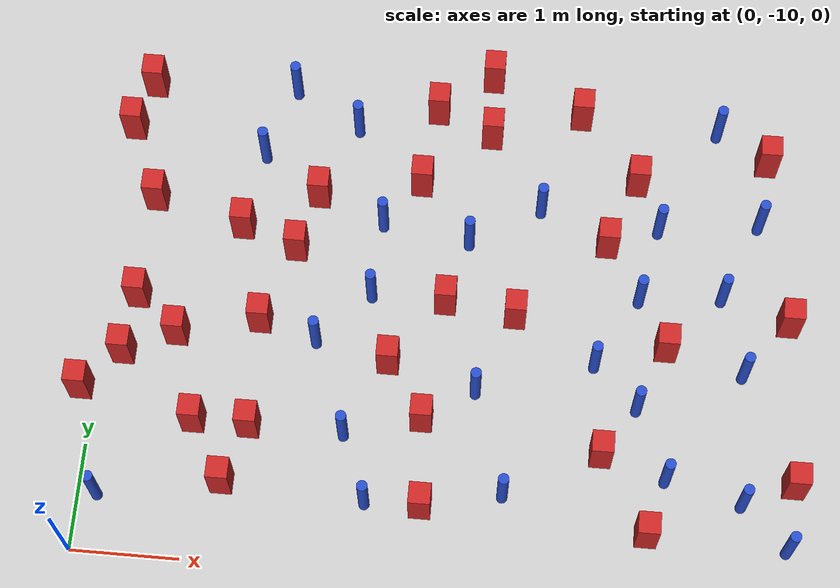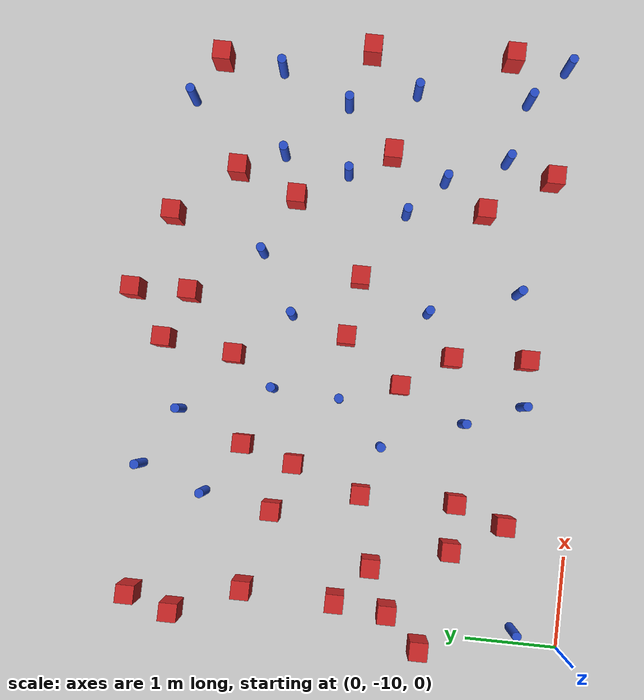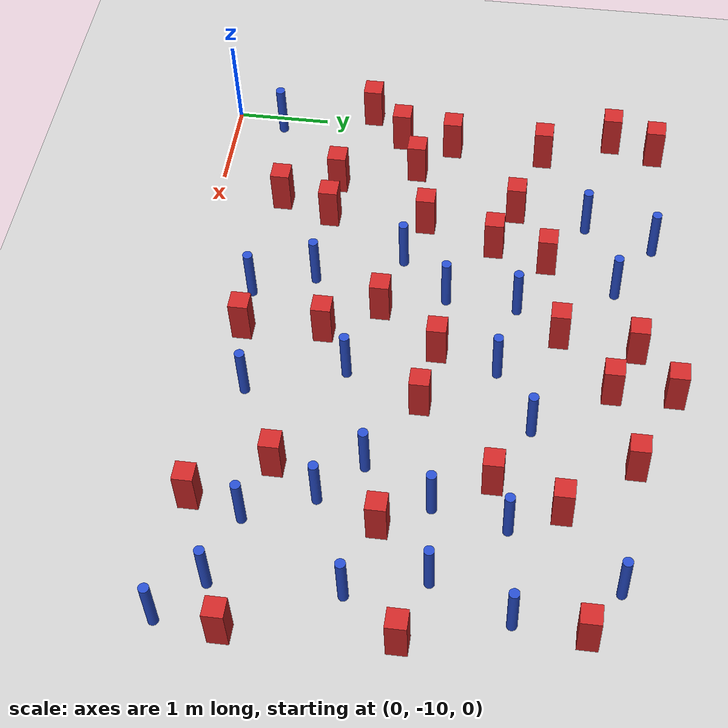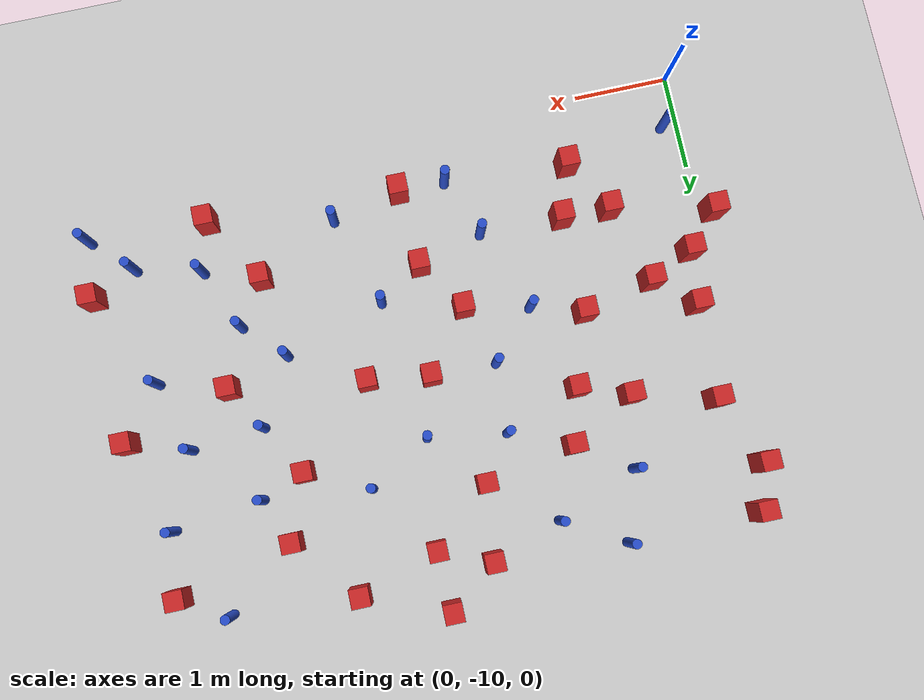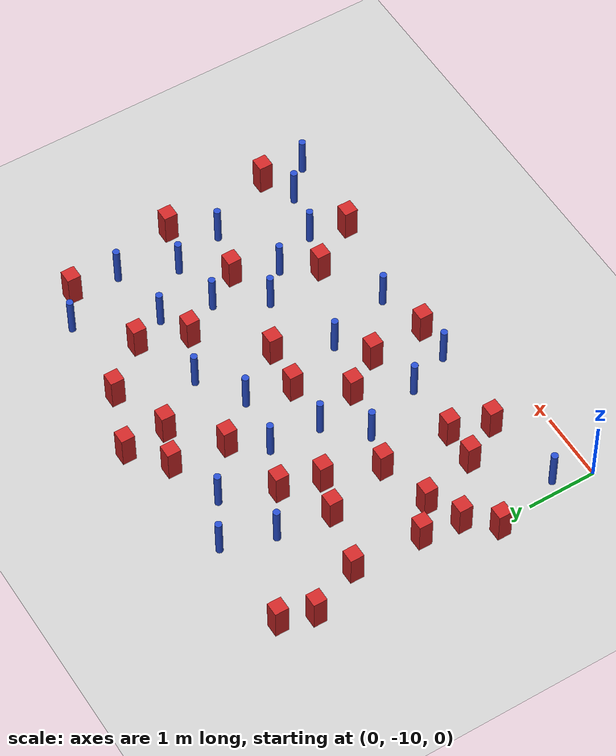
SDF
<sdf version="1.6">
 <world name="default">
  <model name="ground_plane">
   <static>1</static>
   <link name="link">
    <collision name="collision">
     <geometry><plane><normal>0 0 1</normal><size>100 100</size></plane></geometry>
     <surface><friction><ode><mu>100</mu><mu2>50</mu2></ode></friction></surface>
    </collision>
    <visual name="visual">
     <cast_shadows>0</cast_shadows>
     <geometry><plane><normal>0 0 1</normal><size>100 100</size></plane></geometry>
     <material>
      <ambient>1.0 1.0 1.0 1.0</ambient>
      <diffuse>0.8 0.8 0.8 1.0</diffuse>
      <specular>0.01 0.01 0.01 1.000000</specular>
     </material>
    </visual>
   </link>
  </model>
  <model name="square_post_obstacle0">
   <static>true</static>
   <pose>1.72924373991 -6.90918453501 8.22691968438e-08 7.2212513382e-06 -7.54495500217e-07 2.29674213826e-05</pose>
   <link name="link">
    <pose>0 0 0.25 0 -0 0</pose>
    <inertial>
     <mass>100</mass>
     <inertia>
      <ixx>0.166667</ixx>
      <ixy>0</ixy>
      <ixz>0</ixz>
      <iyy>0.166667</iyy>
      <iyz>0</iyz>
      <izz>0.166667</izz>
     </inertia>
    </inertial>
    <collision name="collision"><geometry><box><size>.2 .2 .5</size></box></geometry></collision>
    <visual name="visual">
     <geometry><box><size>.2 .2 .5</size></box></geometry>
     <material>
      <script><name>Gazebo/Red</name><uri>file://media/materials/scripts/gazebo.material</uri></script>
     </material>
    </visual>
   </link>
  </model>
  <model name="pole_obstacle5">
   <static>true</static>
   <pose>5.67499437362 -5.37067513522 2.88873142074e-08 -9.90536690842e-09 4.60219948965e-07 -1.20965994976e-07</pose>
   <link name="link">
    <pose>0 0 0.3 0 -0 0</pose>
    <inertial>
     <mass>1</mass>
     <inertia><ixx>0.145833</ixx><ixy>0</ixy><ixz>0</ixz><iyy>0.145833</iyy><iyz>0</iyz><izz>0.125</izz></inertia>
    </inertial>
    <collision name="collision">
     <geometry><cylinder><radius>0.05</radius><length>.6</length></cylinder></geometry>
    </collision>
    <visual name="visual">
     <geometry><cylinder><radius>0.05</radius><length>.6</length></cylinder></geometry>
     <material>
      <script><name>Gazebo/Blue</name><uri>file://media/materials/scripts/gazebo.material</uri></script>
     </material>
    </visual>
   </link>
  </model>
  <model name="square_post_obstacle4">
   <static>true</static>
   <pose>1.47101425126 -7.66922234717 8.22691968438e-08 7.2212513382e-06 -7.54495500217e-07 2.29674213826e-05</pose>
   <link name="link">
    <pose>0 0 0.25 0 -0 0</pose>
    <inertial>
     <mass>100</mass>
     <inertia>
      <ixx>0.166667</ixx>
      <ixy>0</ixy>
      <ixz>0</ixz>
      <iyy>0.166667</iyy>
      <iyz>0</iyz>
      <izz>0.166667</izz>
     </inertia>
    </inertial>
    <collision name="collision"><geometry><box><size>.2 .2 .5</size></box></geometry></collision>
    <visual name="visual">
     <geometry><box><size>.2 .2 .5</size></box></geometry>
     <material>
      <script><name>Gazebo/Red</name><uri>file://media/materials/scripts/gazebo.material</uri></script>
     </material>
    </visual>
   </link>
  </model>
  <model name="pole_obstacle20">
   <static>true</static>
   <pose>4.61211084176 -7.8648677454 2.88873142074e-08 -9.90536690842e-09 4.60219948965e-07 -1.20965994976e-07</pose>
   <link name="link">
    <pose>0 0 0.3 0 -0 0</pose>
    <inertial>
     <mass>1</mass>
     <inertia><ixx>0.145833</ixx><ixy>0</ixy><ixz>0</ixz><iyy>0.145833</iyy><iyz>0</iyz><izz>0.125</izz></inertia>
    </inertial>
    <collision name="collision">
     <geometry><cylinder><radius>0.05</radius><length>.6</length></cylinder></geometry>
    </collision>
    <visual name="visual">
     <geometry><cylinder><radius>0.05</radius><length>.6</length></cylinder></geometry>
     <material>
      <script><name>Gazebo/Blue</name><uri>file://media/materials/scripts/gazebo.material</uri></script>
     </material>
    </visual>
   </link>
  </model>
  <model name="square_post_obstacle19">
   <static>true</static>
   <pose>4.92493949183 -5.96055338236 8.22691968438e-08 7.2212513382e-06 -7.54495500217e-07 2.29674213826e-05</pose>
   <link name="link">
    <pose>0 0 0.25 0 -0 0</pose>
    <inertial>
     <mass>100</mass>
     <inertia>
      <ixx>0.166667</ixx>
      <ixy>0</ixy>
      <ixz>0</ixz>
      <iyy>0.166667</iyy>
      <iyz>0</iyz>
      <izz>0.166667</izz>
     </inertia>
    </inertial>
    <collision name="collision"><geometry><box><size>.2 .2 .5</size></box></geometry></collision>
    <visual name="visual">
     <geometry><box><size>.2 .2 .5</size></box></geometry>
     <material>
      <script><name>Gazebo/Red</name><uri>file://media/materials/scripts/gazebo.material</uri></script>
     </material>
    </visual>
   </link>
  </model>
  <model name="square_post_obstacle22">
   <static>true</static>
   <pose>6.48371308405 -8.87821125765 8.22691968438e-08 7.2212513382e-06 -7.54495500217e-07 2.29674213826e-05</pose>
   <link name="link">
    <pose>0 0 0.25 0 -0 0</pose>
    <inertial>
     <mass>100</mass>
     <inertia>
      <ixx>0.166667</ixx>
      <ixy>0</ixy>
      <ixz>0</ixz>
      <iyy>0.166667</iyy>
      <iyz>0</iyz>
      <izz>0.166667</izz>
     </inertia>
    </inertial>
    <collision name="collision"><geometry><box><size>.2 .2 .5</size></box></geometry></collision>
    <visual name="visual">
     <geometry><box><size>.2 .2 .5</size></box></geometry>
     <material>
      <script><name>Gazebo/Red</name><uri>file://media/materials/scripts/gazebo.material</uri></script>
     </material>
    </visual>
   </link>
  </model>
  <model name="square_post_obstacle39">
   <static>true</static>
   <pose>3.49735225238 -5.57070187817 8.22691968438e-08 7.2212513382e-06 -7.54495500217e-07 2.29674213826e-05</pose>
   <link name="link">
    <pose>0 0 0.25 0 -0 0</pose>
    <inertial>
     <mass>100</mass>
     <inertia>
      <ixx>0.166667</ixx>
      <ixy>0</ixy>
      <ixz>0</ixz>
      <iyy>0.166667</iyy>
      <iyz>0</iyz>
      <izz>0.166667</izz>
     </inertia>
    </inertial>
    <collision name="collision"><geometry><box><size>.2 .2 .5</size></box></geometry></collision>
    <visual name="visual">
     <geometry><box><size>.2 .2 .5</size></box></geometry>
     <material>
      <script><name>Gazebo/Red</name><uri>file://media/materials/scripts/gazebo.material</uri></script>
     </material>
    </visual>
   </link>
  </model>
  <model name="pole_obstacle50">
   <static>true</static>
   <pose>0.176782700524 -9.46887938539 2.88873142074e-08 -9.90536690875e-09 4.60219948965e-07 -1.20965994978e-07</pose>
   <link name="link">
    <pose>0 0 0.3 0 -0 0</pose>
    <inertial>
     <mass>1</mass>
     <inertia><ixx>0.145833</ixx><ixy>0</ixy><ixz>0</ixz><iyy>0.145833</iyy><iyz>0</iyz><izz>0.125</izz></inertia>
    </inertial>
    <collision name="collision">
     <geometry><cylinder><radius>0.05</radius><length>.6</length></cylinder></geometry>
    </collision>
    <visual name="visual">
     <geometry><cylinder><radius>0.05</radius><length>.6</length></cylinder></geometry>
     <material>
      <script><name>Gazebo/Blue</name><uri>file://media/materials/scripts/gazebo.material</uri></script>
     </material>
    </visual>
   </link>
  </model>
  <model name="pole_obstacle52">
   <static>true</static>
   <pose>2.19847447089 -5.60190322194 2.88873142074e-08 -9.90536689859e-09 4.60219948989e-07 -1.20965994961e-07</pose>
   <link name="link">
    <pose>0 0 0.3 0 -0 0</pose>
    <inertial>
     <mass>1</mass>
     <inertia><ixx>0.145833</ixx><ixy>0</ixy><ixz>0</ixz><iyy>0.145833</iyy><iyz>0</iyz><izz>0.125</izz></inertia>
    </inertial>
    <collision name="collision">
     <geometry><cylinder><radius>0.05</radius><length>.6</length></cylinder></geometry>
    </collision>
    <visual name="visual">
     <geometry><cylinder><radius>0.05</radius><length>.6</length></cylinder></geometry>
     <material>
      <script><name>Gazebo/Blue</name><uri>file://media/materials/scripts/gazebo.material</uri></script>
     </material>
    </visual>
   </link>
  </model>
  <model name="square_post_obstacle42">
   <static>true</static>
   <pose>1.47980175023 -8.71053882282 8.22691968438e-08 7.22125133819e-06 -7.54495500217e-07 2.29674213826e-05</pose>
   <link name="link">
    <pose>0 0 0.25 0 -0 0</pose>
    <inertial>
     <mass>100</mass>
     <inertia>
      <ixx>0.166667</ixx>
      <ixy>0</ixy>
      <ixz>0</ixz>
      <iyy>0.166667</iyy>
      <iyz>0</iyz>
      <izz>0.166667</izz>
     </inertia>
    </inertial>
    <collision name="collision"><geometry><box><size>.2 .2 .5</size></box></geometry></collision>
    <visual name="visual">
     <geometry><box><size>.2 .2 .5</size></box></geometry>
     <material>
      <script><name>Gazebo/Red</name><uri>file://media/materials/scripts/gazebo.material</uri></script>
     </material>
    </visual>
   </link>
  </model>
  <model name="pole_obstacle56">
   <static>true</static>
   <pose>3.52982063173 -8.21427711611 2.88873142074e-08 -9.90536692318e-09 4.6021994893e-07 -1.20965994988e-07</pose>
   <link name="link">
    <pose>0 0 0.3 0 -0 0</pose>
    <inertial>
     <mass>1</mass>
     <inertia><ixx>0.145833</ixx><ixy>0</ixy><ixz>0</ixz><iyy>0.145833</iyy><iyz>0</iyz><izz>0.125</izz></inertia>
    </inertial>
    <collision name="collision">
     <geometry><cylinder><radius>0.05</radius><length>.6</length></cylinder></geometry>
    </collision>
    <visual name="visual">
     <geometry><cylinder><radius>0.05</radius><length>.6</length></cylinder></geometry>
     <material>
      <script><name>Gazebo/Blue</name><uri>file://media/materials/scripts/gazebo.material</uri></script>
     </material>
    </visual>
   </link>
  </model>
  <model name="pole_obstacle61">
   <static>true</static>
   <pose>6.09882348917 -6.32620255858 2.88873142074e-08 -9.90536690842e-09 4.60219948965e-07 -1.20965994976e-07</pose>
   <link name="link">
    <pose>0 0 0.3 0 -0 0</pose>
    <inertial>
     <mass>1</mass>
     <inertia><ixx>0.145833</ixx><ixy>0</ixy><ixz>0</ixz><iyy>0.145833</iyy><iyz>0</iyz><izz>0.125</izz></inertia>
    </inertial>
    <collision name="collision">
     <geometry><cylinder><radius>0.05</radius><length>.6</length></cylinder></geometry>
    </collision>
    <visual name="visual">
     <geometry><cylinder><radius>0.05</radius><length>.6</length></cylinder></geometry>
     <material>
      <script><name>Gazebo/Blue</name><uri>file://media/materials/scripts/gazebo.material</uri></script>
     </material>
    </visual>
   </link>
  </model>
  <model name="pole_obstacle67">
   <static>true</static>
   <pose>3.35807969059 -6.72086827662 2.88873142074e-08 -9.90536689859e-09 4.60219948989e-07 -1.20965994961e-07</pose>
   <link name="link">
    <pose>0 0 0.3 0 -0 0</pose>
    <inertial>
     <mass>1</mass>
     <inertia><ixx>0.145833</ixx><ixy>0</ixy><ixz>0</ixz><iyy>0.145833</iyy><iyz>0</iyz><izz>0.125</izz></inertia>
    </inertial>
    <collision name="collision">
     <geometry><cylinder><radius>0.05</radius><length>.6</length></cylinder></geometry>
    </collision>
    <visual name="visual">
     <geometry><cylinder><radius>0.05</radius><length>.6</length></cylinder></geometry>
     <material>
      <script><name>Gazebo/Blue</name><uri>file://media/materials/scripts/gazebo.material</uri></script>
     </material>
    </visual>
   </link>
  </model>
  <model name="square_post_obstacle51">
   <static>true</static>
   <pose>0.96779387256 -8.69952566501 8.22691968438e-08 7.22125133819e-06 -7.54495500217e-07 2.29674213826e-05</pose>
   <link name="link">
    <pose>0 0 0.25 0 -0 0</pose>
    <inertial>
     <mass>100</mass>
     <inertia>
      <ixx>0.166667</ixx>
      <ixy>0</ixy>
      <ixz>0</ixz>
      <iyy>0.166667</iyy>
      <iyz>0</iyz>
      <izz>0.166667</izz>
     </inertia>
    </inertial>
    <collision name="collision"><geometry><box><size>.2 .2 .5</size></box></geometry></collision>
    <visual name="visual">
     <geometry><box><size>.2 .2 .5</size></box></geometry>
     <material>
      <script><name>Gazebo/Red</name><uri>file://media/materials/scripts/gazebo.material</uri></script>
     </material>
    </visual>
   </link>
  </model>
  <model name="square_post_obstacle57">
   <static>true</static>
   <pose>3.47009047575 -4.94853314473 8.22691968438e-08 7.2212513382e-06 -7.54495500217e-07 2.29674213826e-05</pose>
   <link name="link">
    <pose>0 0 0.25 0 -0 0</pose>
    <inertial>
     <mass>100</mass>
     <inertia>
      <ixx>0.166667</ixx>
      <ixy>0</ixy>
      <ixz>0</ixz>
      <iyy>0.166667</iyy>
      <iyz>0</iyz>
      <izz>0.166667</izz>
     </inertia>
    </inertial>
    <collision name="collision"><geometry><box><size>.2 .2 .5</size></box></geometry></collision>
    <visual name="visual">
     <geometry><box><size>.2 .2 .5</size></box></geometry>
     <material>
      <script><name>Gazebo/Red</name><uri>file://media/materials/scripts/gazebo.material</uri></script>
     </material>
    </visual>
   </link>
  </model>
  <model name="pole_obstacle72">
   <static>true</static>
   <pose>1.32416595308 -5.96092639543 2.88873142074e-08 -9.90536689852e-09 4.60219948989e-07 -1.2096599496e-07</pose>
   <link name="link">
    <pose>0 0 0.3 0 -0 0</pose>
    <inertial>
     <mass>1</mass>
     <inertia><ixx>0.145833</ixx><ixy>0</ixy><ixz>0</ixz><iyy>0.145833</iyy><iyz>0</iyz><izz>0.125</izz></inertia>
    </inertial>
    <collision name="collision">
     <geometry><cylinder><radius>0.05</radius><length>.6</length></cylinder></geometry>
    </collision>
    <visual name="visual">
     <geometry><cylinder><radius>0.05</radius><length>.6</length></cylinder></geometry>
     <material>
      <script><name>Gazebo/Blue</name><uri>file://media/materials/scripts/gazebo.material</uri></script>
     </material>
    </visual>
   </link>
  </model>
  <model name="square_post_obstacle66">
   <static>true</static>
   <pose>-0.112093479951 -8.45973078906 8.22691968438e-08 7.22125133819e-06 -7.54495500217e-07 2.29674213826e-05</pose>
   <link name="link">
    <pose>0 0 0.25 0 -0 0</pose>
    <inertial>
     <mass>100</mass>
     <inertia>
      <ixx>0.166667</ixx>
      <ixy>0</ixy>
      <ixz>0</ixz>
      <iyy>0.166667</iyy>
      <iyz>0</iyz>
      <izz>0.166667</izz>
     </inertia>
    </inertial>
    <collision name="collision"><geometry><box><size>.2 .2 .5</size></box></geometry></collision>
    <visual name="visual">
     <geometry><box><size>.2 .2 .5</size></box></geometry>
     <material>
      <script><name>Gazebo/Red</name><uri>file://media/materials/scripts/gazebo.material</uri></script>
     </material>
    </visual>
   </link>
  </model>
  <model name="square_post_obstacle70">
   <static>true</static>
   <pose>5.16264152638 -9.44523545595 8.22691968438e-08 7.2212513382e-06 -7.54495500217e-07 2.29674213826e-05</pose>
   <link name="link">
    <pose>0 0 0.25 0 -0 0</pose>
    <inertial>
     <mass>100</mass>
     <inertia>
      <ixx>0.166667</ixx>
      <ixy>0</ixy>
      <ixz>0</ixz>
      <iyy>0.166667</iyy>
      <iyz>0</iyz>
      <izz>0.166667</izz>
     </inertia>
    </inertial>
    <collision name="collision"><geometry><box><size>.2 .2 .5</size></box></geometry></collision>
    <visual name="visual">
     <geometry><box><size>.2 .2 .5</size></box></geometry>
     <material>
      <script><name>Gazebo/Red</name><uri>file://media/materials/scripts/gazebo.material</uri></script>
     </material>
    </visual>
   </link>
  </model>
  <model name="pole_obstacle82">
   <static>true</static>
   <pose>4.99626905083 -7.17878422049 2.88873142074e-08 -9.90536690842e-09 4.60219948965e-07 -1.20965994976e-07</pose>
   <link name="link">
    <pose>0 0 0.3 0 -0 0</pose>
    <inertial>
     <mass>1</mass>
     <inertia><ixx>0.145833</ixx><ixy>0</ixy><ixz>0</ixz><iyy>0.145833</iyy><iyz>0</iyz><izz>0.125</izz></inertia>
    </inertial>
    <collision name="collision">
     <geometry><cylinder><radius>0.05</radius><length>.6</length></cylinder></geometry>
    </collision>
    <visual name="visual">
     <geometry><cylinder><radius>0.05</radius><length>.6</length></cylinder></geometry>
     <material>
      <script><name>Gazebo/Blue</name><uri>file://media/materials/scripts/gazebo.material</uri></script>
     </material>
    </visual>
   </link>
  </model>
  <model name="square_post_obstacle71">
   <static>true</static>
   <pose>0.707926807707 -7.85827353259 8.22691968438e-08 7.2212513382e-06 -7.54495500217e-07 2.29674213826e-05</pose>
   <link name="link">
    <pose>0 0 0.25 0 -0 0</pose>
    <inertial>
     <mass>100</mass>
     <inertia>
      <ixx>0.166667</ixx>
      <ixy>0</ixy>
      <ixz>0</ixz>
      <iyy>0.166667</iyy>
      <iyz>0</iyz>
      <izz>0.166667</izz>
     </inertia>
    </inertial>
    <collision name="collision"><geometry><box><size>.2 .2 .5</size></box></geometry></collision>
    <visual name="visual">
     <geometry><box><size>.2 .2 .5</size></box></geometry>
     <material>
      <script><name>Gazebo/Red</name><uri>file://media/materials/scripts/gazebo.material</uri></script>
     </material>
    </visual>
   </link>
  </model>
  <model name="square_post_obstacle76">
   <static>true</static>
   <pose>3.11503618451 -9.34687924644 8.22691968438e-08 7.22125133819e-06 -7.54495500217e-07 2.29674213826e-05</pose>
   <link name="link">
    <pose>0 0 0.25 0 -0 0</pose>
    <inertial>
     <mass>100</mass>
     <inertia>
      <ixx>0.166667</ixx>
      <ixy>0</ixy>
      <ixz>0</ixz>
      <iyy>0.166667</iyy>
      <iyz>0</iyz>
      <izz>0.166667</izz>
     </inertia>
    </inertial>
    <collision name="collision"><geometry><box><size>.2 .2 .5</size></box></geometry></collision>
    <visual name="visual">
     <geometry><box><size>.2 .2 .5</size></box></geometry>
     <material>
      <script><name>Gazebo/Red</name><uri>file://media/materials/scripts/gazebo.material</uri></script>
     </material>
    </visual>
   </link>
  </model>
  <model name="square_post_obstacle86">
   <static>true</static>
   <pose>4.71585922281 -8.72826943587 8.22691968438e-08 7.22125133819e-06 -7.54495500217e-07 2.29674213826e-05</pose>
   <link name="link">
    <pose>0 0 0.25 0 -0 0</pose>
    <inertial>
     <mass>100</mass>
     <inertia>
      <ixx>0.166667</ixx>
      <ixy>0</ixy>
      <ixz>0</ixz>
      <iyy>0.166667</iyy>
      <iyz>0</iyz>
      <izz>0.166667</izz>
     </inertia>
    </inertial>
    <collision name="collision"><geometry><box><size>.2 .2 .5</size></box></geometry></collision>
    <visual name="visual">
     <geometry><box><size>.2 .2 .5</size></box></geometry>
     <material>
      <script><name>Gazebo/Red</name><uri>file://media/materials/scripts/gazebo.material</uri></script>
     </material>
    </visual>
   </link>
  </model>
  <model name="pole_obstacle97">
   <static>true</static>
   <pose>2.35308978325 -8.72357436861 2.88873142074e-08 -9.90536692318e-09 4.6021994893e-07 -1.20965994988e-07</pose>
   <link name="link">
    <pose>0 0 0.3 0 -0 0</pose>
    <inertial>
     <mass>1</mass>
     <inertia><ixx>0.145833</ixx><ixy>0</ixy><ixz>0</ixz><iyy>0.145833</iyy><iyz>0</iyz><izz>0.125</izz></inertia>
    </inertial>
    <collision name="collision">
     <geometry><cylinder><radius>0.05</radius><length>.6</length></cylinder></geometry>
    </collision>
    <visual name="visual">
     <geometry><cylinder><radius>0.05</radius><length>.6</length></cylinder></geometry>
     <material>
      <script><name>Gazebo/Blue</name><uri>file://media/materials/scripts/gazebo.material</uri></script>
     </material>
    </visual>
   </link>
  </model>
  <model name="square_post_obstacle93">
   <static>true</static>
   <pose>2.95899631589 -5.3449075638 8.22691968438e-08 7.22125133819e-06 -7.54495500217e-07 2.29674213826e-05</pose>
   <link name="link">
    <pose>0 0 0.25 0 -0 0</pose>
    <inertial>
     <mass>100</mass>
     <inertia>
      <ixx>0.166667</ixx>
      <ixy>0</ixy>
      <ixz>0</ixz>
      <iyy>0.166667</iyy>
      <iyz>0</iyz>
      <izz>0.166667</izz>
     </inertia>
    </inertial>
    <collision name="collision"><geometry><box><size>.2 .2 .5</size></box></geometry></collision>
    <visual name="visual">
     <geometry><box><size>.2 .2 .5</size></box></geometry>
     <material>
      <script><name>Gazebo/Red</name><uri>file://media/materials/scripts/gazebo.material</uri></script>
     </material>
    </visual>
   </link>
  </model>
  <model name="square_post_obstacle94">
   <static>true</static>
   <pose>3.84480075429 -7.43184253392 8.22691968438e-08 7.22125133819e-06 -7.54495500217e-07 2.29674213826e-05</pose>
   <link name="link">
    <pose>0 0 0.25 0 -0 0</pose>
    <inertial>
     <mass>100</mass>
     <inertia>
      <ixx>0.166667</ixx>
      <ixy>0</ixy>
      <ixz>0</ixz>
      <iyy>0.166667</iyy>
      <iyz>0</iyz>
      <izz>0.166667</izz>
     </inertia>
    </inertial>
    <collision name="collision"><geometry><box><size>.2 .2 .5</size></box></geometry></collision>
    <visual name="visual">
     <geometry><box><size>.2 .2 .5</size></box></geometry>
     <material>
      <script><name>Gazebo/Red</name><uri>file://media/materials/scripts/gazebo.material</uri></script>
     </material>
    </visual>
   </link>
  </model>
  <model name="pole_obstacle103">
   <static>true</static>
   <pose>6.0129141949 -9.10092094346 2.88873142074e-08 -9.9053668967e-09 4.60219948993e-07 -1.20965994957e-07</pose>
   <link name="link">
    <pose>0 0 0.3 0 -0 0</pose>
    <inertial>
     <mass>1</mass>
     <inertia><ixx>0.145833</ixx><ixy>0</ixy><ixz>0</ixz><iyy>0.145833</iyy><iyz>0</iyz><izz>0.125</izz></inertia>
    </inertial>
    <collision name="collision">
     <geometry><cylinder><radius>0.05</radius><length>.6</length></cylinder></geometry>
    </collision>
    <visual name="visual">
     <geometry><cylinder><radius>0.05</radius><length>.6</length></cylinder></geometry>
     <material>
      <script><name>Gazebo/Blue</name><uri>file://media/materials/scripts/gazebo.material</uri></script>
     </material>
    </visual>
   </link>
  </model>
  <model name="square_post_obstacle99">
   <static>true</static>
   <pose>6.40513397245 -7.30396654687 8.22691968438e-08 7.2212513382e-06 -7.54495500217e-07 2.29674213826e-05</pose>
   <link name="link">
    <pose>0 0 0.25 0 -0 0</pose>
    <inertial>
     <mass>100</mass>
     <inertia>
      <ixx>0.166667</ixx>
      <ixy>0</ixy>
      <ixz>0</ixz>
      <iyy>0.166667</iyy>
      <iyz>0</iyz>
      <izz>0.166667</izz>
     </inertia>
    </inertial>
    <collision name="collision"><geometry><box><size>.2 .2 .5</size></box></geometry></collision>
    <visual name="visual">
     <geometry><box><size>.2 .2 .5</size></box></geometry>
     <material>
      <script><name>Gazebo/Red</name><uri>file://media/materials/scripts/gazebo.material</uri></script>
     </material>
    </visual>
   </link>
  </model>
  <model name="pole_obstacle106">
   <static>true</static>
   <pose>2.48400518365 -7.33399043733 2.88873142074e-08 -9.90536689859e-09 4.60219948989e-07 -1.20965994961e-07</pose>
   <link name="link">
    <pose>0 0 0.3 0 -0 0</pose>
    <inertial>
     <mass>1</mass>
     <inertia><ixx>0.145833</ixx><ixy>0</ixy><ixz>0</ixz><iyy>0.145833</iyy><iyz>0</iyz><izz>0.125</izz></inertia>
    </inertial>
    <collision name="collision">
     <geometry><cylinder><radius>0.05</radius><length>.6</length></cylinder></geometry>
    </collision>
    <visual name="visual">
     <geometry><cylinder><radius>0.05</radius><length>.6</length></cylinder></geometry>
     <material>
      <script><name>Gazebo/Blue</name><uri>file://media/materials/scripts/gazebo.material</uri></script>
     </material>
    </visual>
   </link>
  </model>
  <model name="square_post_obstacle101">
   <static>true</static>
   <pose>0.0219189531918 -5.75184931215 8.22691968438e-08 7.22125133819e-06 -7.54495500217e-07 2.29674213826e-05</pose>
   <link name="link">
    <pose>0 0 0.25 0 -0 0</pose>
    <inertial>
     <mass>100</mass>
     <inertia>
      <ixx>0.166667</ixx>
      <ixy>0</ixy>
      <ixz>0</ixz>
      <iyy>0.166667</iyy>
      <iyz>0</iyz>
      <izz>0.166667</izz>
     </inertia>
    </inertial>
    <collision name="collision"><geometry><box><size>.2 .2 .5</size></box></geometry></collision>
    <visual name="visual">
     <geometry><box><size>.2 .2 .5</size></box></geometry>
     <material>
      <script><name>Gazebo/Red</name><uri>file://media/materials/scripts/gazebo.material</uri></script>
     </material>
    </visual>
   </link>
  </model>
  <model name="square_post_obstacle104">
   <static>true</static>
   <pose>4.67030905301 -6.63405817961 8.22691968438e-08 7.2212513382e-06 -7.54495500217e-07 2.29674213826e-05</pose>
   <link name="link">
    <pose>0 0 0.25 0 -0 0</pose>
    <inertial>
     <mass>100</mass>
     <inertia>
      <ixx>0.166667</ixx>
      <ixy>0</ixy>
      <ixz>0</ixz>
      <iyy>0.166667</iyy>
      <iyz>0</iyz>
      <izz>0.166667</izz>
     </inertia>
    </inertial>
    <collision name="collision"><geometry><box><size>.2 .2 .5</size></box></geometry></collision>
    <visual name="visual">
     <geometry><box><size>.2 .2 .5</size></box></geometry>
     <material>
      <script><name>Gazebo/Red</name><uri>file://media/materials/scripts/gazebo.material</uri></script>
     </material>
    </visual>
   </link>
  </model>
  <model name="square_post_obstacle107">
   <static>true</static>
   <pose>2.70127224477 -7.98387619077 8.22691968438e-08 7.2212513382e-06 -7.54495500217e-07 2.29674213826e-05</pose>
   <link name="link">
    <pose>0 0 0.25 0 -0 0</pose>
    <inertial>
     <mass>100</mass>
     <inertia>
      <ixx>0.166667</ixx>
      <ixy>0</ixy>
      <ixz>0</ixz>
      <iyy>0.166667</iyy>
      <iyz>0</iyz>
      <izz>0.166667</izz>
     </inertia>
    </inertial>
    <collision name="collision"><geometry><box><size>.2 .2 .5</size></box></geometry></collision>
    <visual name="visual">
     <geometry><box><size>.2 .2 .5</size></box></geometry>
     <material>
      <script><name>Gazebo/Red</name><uri>file://media/materials/scripts/gazebo.material</uri></script>
     </material>
    </visual>
   </link>
  </model>
  <model name="square_post_obstacle109">
   <static>true</static>
   <pose>0.29644995468 -7.51115526014 8.22691968438e-08 7.22125133819e-06 -7.54495500217e-07 2.29674213826e-05</pose>
   <link name="link">
    <pose>0 0 0.25 0 -0 0</pose>
    <inertial>
     <mass>100</mass>
     <inertia>
      <ixx>0.166667</ixx>
      <ixy>0</ixy>
      <ixz>0</ixz>
      <iyy>0.166667</iyy>
      <iyz>0</iyz>
      <izz>0.166667</izz>
     </inertia>
    </inertial>
    <collision name="collision"><geometry><box><size>.2 .2 .5</size></box></geometry></collision>
    <visual name="visual">
     <geometry><box><size>.2 .2 .5</size></box></geometry>
     <material>
      <script><name>Gazebo/Red</name><uri>file://media/materials/scripts/gazebo.material</uri></script>
     </material>
    </visual>
   </link>
  </model>
  <model name="square_post_obstacle117">
   <static>true</static>
   <pose>4.3514937658 -5.29262129264 8.22691968438e-08 7.22125133819e-06 -7.54495500217e-07 2.29674213826e-05</pose>
   <link name="link">
    <pose>0 0 0.25 0 -0 0</pose>
    <inertial>
     <mass>100</mass>
     <inertia>
      <ixx>0.166667</ixx>
      <ixy>0</ixy>
      <ixz>0</ixz>
      <iyy>0.166667</iyy>
      <iyz>0</iyz>
      <izz>0.166667</izz>
     </inertia>
    </inertial>
    <collision name="collision"><geometry><box><size>.2 .2 .5</size></box></geometry></collision>
    <visual name="visual">
     <geometry><box><size>.2 .2 .5</size></box></geometry>
     <material>
      <script><name>Gazebo/Red</name><uri>file://media/materials/scripts/gazebo.material</uri></script>
     </material>
    </visual>
   </link>
  </model>
  <model name="pole_obstacle118">
   <static>true</static>
   <pose>5.14787717952 -6.44754997938 2.88873142074e-08 -9.90536690842e-09 4.60219948965e-07 -1.20965994976e-07</pose>
   <link name="link">
    <pose>0 0 0.3 0 -0 0</pose>
    <inertial>
     <mass>1</mass>
     <inertia><ixx>0.145833</ixx><ixy>0</ixy><ixz>0</ixz><iyy>0.145833</iyy><iyz>0</iyz><izz>0.125</izz></inertia>
    </inertial>
    <collision name="collision">
     <geometry><cylinder><radius>0.05</radius><length>.6</length></cylinder></geometry>
    </collision>
    <visual name="visual">
     <geometry><cylinder><radius>0.05</radius><length>.6</length></cylinder></geometry>
     <material>
      <script><name>Gazebo/Blue</name><uri>file://media/materials/scripts/gazebo.material</uri></script>
     </material>
    </visual>
   </link>
  </model>
  <model name="pole_obstacle129">
   <static>true</static>
   <pose>4.01919627724 -6.32503673697 2.88873142074e-08 -9.90536690822e-09 4.60219948966e-07 -1.20965994976e-07</pose>
   <link name="link">
    <pose>0 0 0.3 0 -0 0</pose>
    <inertial>
     <mass>1</mass>
     <inertia><ixx>0.145833</ixx><ixy>0</ixy><ixz>0</ixz><iyy>0.145833</iyy><iyz>0</iyz><izz>0.125</izz></inertia>
    </inertial>
    <collision name="collision">
     <geometry><cylinder><radius>0.05</radius><length>.6</length></cylinder></geometry>
    </collision>
    <visual name="visual">
     <geometry><cylinder><radius>0.05</radius><length>.6</length></cylinder></geometry>
     <material>
      <script><name>Gazebo/Blue</name><uri>file://media/materials/scripts/gazebo.material</uri></script>
     </material>
    </visual>
   </link>
  </model>
  <model name="square_post_obstacle125">
   <static>true</static>
   <pose>1.89093765446 -6.3357709836 8.22691968438e-08 7.2212513382e-06 -7.54495500217e-07 2.29674213826e-05</pose>
   <link name="link">
    <pose>0 0 0.25 0 -0 0</pose>
    <inertial>
     <mass>100</mass>
     <inertia>
      <ixx>0.166667</ixx>
      <ixy>0</ixy>
      <ixz>0</ixz>
      <iyy>0.166667</iyy>
      <iyz>0</iyz>
      <izz>0.166667</izz>
     </inertia>
    </inertial>
    <collision name="collision"><geometry><box><size>.2 .2 .5</size></box></geometry></collision>
    <visual name="visual">
     <geometry><box><size>.2 .2 .5</size></box></geometry>
     <material>
      <script><name>Gazebo/Red</name><uri>file://media/materials/scripts/gazebo.material</uri></script>
     </material>
    </visual>
   </link>
  </model>
  <model name="square_post_obstacle126">
   <static>true</static>
   <pose>6.16103932563 -5.65006381302 8.22691968438e-08 7.2212513382e-06 -7.54495500217e-07 2.29674213826e-05</pose>
   <link name="link">
    <pose>0 0 0.25 0 -0 0</pose>
    <inertial>
     <mass>100</mass>
     <inertia>
      <ixx>0.166667</ixx>
      <ixy>0</ixy>
      <ixz>0</ixz>
      <iyy>0.166667</iyy>
      <iyz>0</iyz>
      <izz>0.166667</izz>
     </inertia>
    </inertial>
    <collision name="collision"><geometry><box><size>.2 .2 .5</size></box></geometry></collision>
    <visual name="visual">
     <geometry><box><size>.2 .2 .5</size></box></geometry>
     <material>
      <script><name>Gazebo/Red</name><uri>file://media/materials/scripts/gazebo.material</uri></script>
     </material>
    </visual>
   </link>
  </model>
  <model name="square_post_obstacle132">
   <static>true</static>
   <pose>1.20018660954 -6.72307536196 8.22691968438e-08 7.2212513382e-06 -7.54495500217e-07 2.29674213826e-05</pose>
   <link name="link">
    <pose>0 0 0.25 0 -0 0</pose>
    <inertial>
     <mass>100</mass>
     <inertia>
      <ixx>0.166667</ixx>
      <ixy>0</ixy>
      <ixz>0</ixz>
      <iyy>0.166667</iyy>
      <iyz>0</iyz>
      <izz>0.166667</izz>
     </inertia>
    </inertial>
    <collision name="collision"><geometry><box><size>.2 .2 .5</size></box></geometry></collision>
    <visual name="visual">
     <geometry><box><size>.2 .2 .5</size></box></geometry>
     <material>
      <script><name>Gazebo/Red</name><uri>file://media/materials/scripts/gazebo.material</uri></script>
     </material>
    </visual>
   </link>
  </model>
  <model name="pole_obstacle133">
   <static>true</static>
   <pose>5.77222584295 -7.10353221931 2.88873142074e-08 -9.90536690842e-09 4.60219948965e-07 -1.20965994976e-07</pose>
   <link name="link">
    <pose>0 0 0.3 0 -0 0</pose>
    <inertial>
     <mass>1</mass>
     <inertia><ixx>0.145833</ixx><ixy>0</ixy><ixz>0</ixz><iyy>0.145833</iyy><iyz>0</iyz><izz>0.125</izz></inertia>
    </inertial>
    <collision name="collision">
     <geometry><cylinder><radius>0.05</radius><length>.6</length></cylinder></geometry>
    </collision>
    <visual name="visual">
     <geometry><cylinder><radius>0.05</radius><length>.6</length></cylinder></geometry>
     <material>
      <script><name>Gazebo/Blue</name><uri>file://media/materials/scripts/gazebo.material</uri></script>
     </material>
    </visual>
   </link>
  </model>
  <model name="square_post_obstacle133">
   <static>true</static>
   <pose>1.29673269529 -9.26154031043 8.22691968438e-08 7.2212513382e-06 -7.54495500217e-07 2.29674213826e-05</pose>
   <link name="link">
    <pose>0 0 0.25 0 -0 0</pose>
    <inertial>
     <mass>100</mass>
     <inertia>
      <ixx>0.166667</ixx>
      <ixy>0</ixy>
      <ixz>0</ixz>
      <iyy>0.166667</iyy>
      <iyz>0</iyz>
      <izz>0.166667</izz>
     </inertia>
    </inertial>
    <collision name="collision"><geometry><box><size>.2 .2 .5</size></box></geometry></collision>
    <visual name="visual">
     <geometry><box><size>.2 .2 .5</size></box></geometry>
     <material>
      <script><name>Gazebo/Red</name><uri>file://media/materials/scripts/gazebo.material</uri></script>
     </material>
    </visual>
   </link>
  </model>
  <model name="pole_obstacle142">
   <static>true</static>
   <pose>6.43079987064 -9.49473664175 2.88873142074e-08 -9.9053668967e-09 4.60219948993e-07 -1.20965994957e-07</pose>
   <link name="link">
    <pose>0 0 0.3 0 -0 0</pose>
    <inertial>
     <mass>1</mass>
     <inertia><ixx>0.145833</ixx><ixy>0</ixy><ixz>0</ixz><iyy>0.145833</iyy><iyz>0</iyz><izz>0.125</izz></inertia>
    </inertial>
    <collision name="collision">
     <geometry><cylinder><radius>0.05</radius><length>.6</length></cylinder></geometry>
    </collision>
    <visual name="visual">
     <geometry><cylinder><radius>0.05</radius><length>.6</length></cylinder></geometry>
     <material>
      <script><name>Gazebo/Blue</name><uri>file://media/materials/scripts/gazebo.material</uri></script>
     </material>
    </visual>
   </link>
  </model>
  <model name="pole_obstacle164">
   <static>true</static>
   <pose>1.55680111349 -5.23669673135 2.88873142074e-08 -9.90536689852e-09 4.60219948989e-07 -1.2096599496e-07</pose>
   <link name="link">
    <pose>0 0 0.3 0 -0 0</pose>
    <inertial>
     <mass>1</mass>
     <inertia><ixx>0.145833</ixx><ixy>0</ixy><ixz>0</ixz><iyy>0.145833</iyy><iyz>0</iyz><izz>0.125</izz></inertia>
    </inertial>
    <collision name="collision">
     <geometry><cylinder><radius>0.05</radius><length>.6</length></cylinder></geometry>
    </collision>
    <visual name="visual">
     <geometry><cylinder><radius>0.05</radius><length>.6</length></cylinder></geometry>
     <material>
      <script><name>Gazebo/Blue</name><uri>file://media/materials/scripts/gazebo.material</uri></script>
     </material>
    </visual>
   </link>
  </model>
  <model name="square_post_obstacle160">
   <static>true</static>
   <pose>2.86102367662 -6.13472519187 8.22691968438e-08 7.2212513382e-06 -7.54495500217e-07 2.29674213826e-05</pose>
   <link name="link">
    <pose>0 0 0.25 0 -0 0</pose>
    <inertial>
     <mass>100</mass>
     <inertia>
      <ixx>0.166667</ixx>
      <ixy>0</ixy>
      <ixz>0</ixz>
      <iyy>0.166667</iyy>
      <iyz>0</iyz>
      <izz>0.166667</izz>
     </inertia>
    </inertial>
    <collision name="collision"><geometry><box><size>.2 .2 .5</size></box></geometry></collision>
    <visual name="visual">
     <geometry><box><size>.2 .2 .5</size></box></geometry>
     <material>
      <script><name>Gazebo/Red</name><uri>file://media/materials/scripts/gazebo.material</uri></script>
     </material>
    </visual>
   </link>
  </model>
  <model name="square_post_obstacle163">
   <static>true</static>
   <pose>0.33356584055 -6.49564553059 8.22691968438e-08 7.2212513382e-06 -7.54495500217e-07 2.29674213826e-05</pose>
   <link name="link">
    <pose>0 0 0.25 0 -0 0</pose>
    <inertial>
     <mass>100</mass>
     <inertia>
      <ixx>0.166667</ixx>
      <ixy>0</ixy>
      <ixz>0</ixz>
      <iyy>0.166667</iyy>
      <iyz>0</iyz>
      <izz>0.166667</izz>
     </inertia>
    </inertial>
    <collision name="collision"><geometry><box><size>.2 .2 .5</size></box></geometry></collision>
    <visual name="visual">
     <geometry><box><size>.2 .2 .5</size></box></geometry>
     <material>
      <script><name>Gazebo/Red</name><uri>file://media/materials/scripts/gazebo.material</uri></script>
     </material>
    </visual>
   </link>
  </model>
  <model name="pole_obstacle168">
   <static>true</static>
   <pose>2.60642724884 -9.35536502622 2.88873142074e-08 -9.90536692318e-09 4.6021994893e-07 -1.20965994988e-07</pose>
   <link name="link">
    <pose>0 0 0.3 0 -0 0</pose>
    <inertial>
     <mass>1</mass>
     <inertia><ixx>0.145833</ixx><ixy>0</ixy><ixz>0</ixz><iyy>0.145833</iyy><iyz>0</iyz><izz>0.125</izz></inertia>
    </inertial>
    <collision name="collision">
     <geometry><cylinder><radius>0.05</radius><length>.6</length></cylinder></geometry>
    </collision>
    <visual name="visual">
     <geometry><cylinder><radius>0.05</radius><length>.6</length></cylinder></geometry>
     <material>
      <script><name>Gazebo/Blue</name><uri>file://media/materials/scripts/gazebo.material</uri></script>
     </material>
    </visual>
   </link>
  </model>
  <model name="square_post_obstacle167">
   <static>true</static>
   <pose>0.233157783992 -8.0834764578 8.22691968438e-08 7.2212513382e-06 -7.54495500217e-07 2.29674213826e-05</pose>
   <link name="link">
    <pose>0 0 0.25 0 -0 0</pose>
    <inertial>
     <mass>100</mass>
     <inertia>
      <ixx>0.166667</ixx>
      <ixy>0</ixy>
      <ixz>0</ixz>
      <iyy>0.166667</iyy>
      <iyz>0</iyz>
      <izz>0.166667</izz>
     </inertia>
    </inertial>
    <collision name="collision"><geometry><box><size>.2 .2 .5</size></box></geometry></collision>
    <visual name="visual">
     <geometry><box><size>.2 .2 .5</size></box></geometry>
     <material>
      <script><name>Gazebo/Red</name><uri>file://media/materials/scripts/gazebo.material</uri></script>
     </material>
    </visual>
   </link>
  </model>
  <model name="square_post_obstacle177">
   <static>true</static>
   <pose>3.18316217836 -7.34483515027 8.22691968438e-08 7.2212513382e-06 -7.54495500217e-07 2.29674213826e-05</pose>
   <link name="link">
    <pose>0 0 0.25 0 -0 0</pose>
    <inertial>
     <mass>100</mass>
     <inertia>
      <ixx>0.166667</ixx>
      <ixy>0</ixy>
      <ixz>0</ixz>
      <iyy>0.166667</iyy>
      <iyz>0</iyz>
      <izz>0.166667</izz>
     </inertia>
    </inertial>
    <collision name="collision"><geometry><box><size>.2 .2 .5</size></box></geometry></collision>
    <visual name="visual">
     <geometry><box><size>.2 .2 .5</size></box></geometry>
     <material>
      <script><name>Gazebo/Red</name><uri>file://media/materials/scripts/gazebo.material</uri></script>
     </material>
    </visual>
   </link>
  </model>
  <model name="square_post_obstacle179">
   <static>true</static>
   <pose>3.05877651726 -8.52112479719 8.22691968438e-08 7.22125133819e-06 -7.54495500217e-07 2.29674213826e-05</pose>
   <link name="link">
    <pose>0 0 0.25 0 -0 0</pose>
    <inertial>
     <mass>100</mass>
     <inertia>
      <ixx>0.166667</ixx>
      <ixy>0</ixy>
      <ixz>0</ixz>
      <iyy>0.166667</iyy>
      <iyz>0</iyz>
      <izz>0.166667</izz>
     </inertia>
    </inertial>
    <collision name="collision"><geometry><box><size>.2 .2 .5</size></box></geometry></collision>
    <visual name="visual">
     <geometry><box><size>.2 .2 .5</size></box></geometry>
     <material>
      <script><name>Gazebo/Red</name><uri>file://media/materials/scripts/gazebo.material</uri></script>
     </material>
    </visual>
   </link>
  </model>
  <model name="square_post_obstacle192">
   <static>true</static>
   <pose>0.16515634642 -5.27256360453 8.22691968438e-08 7.2212513382e-06 -7.54495500217e-07 2.29674213826e-05</pose>
   <link name="link">
    <pose>0 0 0.25 0 -0 0</pose>
    <inertial>
     <mass>100</mass>
     <inertia>
      <ixx>0.166667</ixx>
      <ixy>0</ixy>
      <ixz>0</ixz>
      <iyy>0.166667</iyy>
      <iyz>0</iyz>
      <izz>0.166667</izz>
     </inertia>
    </inertial>
    <collision name="collision"><geometry><box><size>.2 .2 .5</size></box></geometry></collision>
    <visual name="visual">
     <geometry><box><size>.2 .2 .5</size></box></geometry>
     <material>
      <script><name>Gazebo/Red</name><uri>file://media/materials/scripts/gazebo.material</uri></script>
     </material>
    </visual>
   </link>
  </model>
  <model name="pole_obstacle187">
   <static>true</static>
   <pose>5.99244239575 -7.85572662789 2.88873142074e-08 -9.90536690842e-09 4.60219948965e-07 -1.20965994976e-07</pose>
   <link name="link">
    <pose>0 0 0.3 0 -0 0</pose>
    <inertial>
     <mass>1</mass>
     <inertia><ixx>0.145833</ixx><ixy>0</ixy><ixz>0</ixz><iyy>0.145833</iyy><iyz>0</iyz><izz>0.125</izz></inertia>
    </inertial>
    <collision name="collision">
     <geometry><cylinder><radius>0.05</radius><length>.6</length></cylinder></geometry>
    </collision>
    <visual name="visual">
     <geometry><cylinder><radius>0.05</radius><length>.6</length></cylinder></geometry>
     <material>
      <script><name>Gazebo/Blue</name><uri>file://media/materials/scripts/gazebo.material</uri></script>
     </material>
    </visual>
   </link>
  </model>
  <model name="pole_obstacle191">
   <static>true</static>
   <pose>5.31292173507 -8.9243670482 2.88873142074e-08 -9.9053668967e-09 4.60219948993e-07 -1.20965994957e-07</pose>
   <link name="link">
    <pose>0 0 0.3 0 -0 0</pose>
    <inertial>
     <mass>1</mass>
     <inertia><ixx>0.145833</ixx><ixy>0</ixy><ixz>0</ixz><iyy>0.145833</iyy><iyz>0</iyz><izz>0.125</izz></inertia>
    </inertial>
    <collision name="collision">
     <geometry><cylinder><radius>0.05</radius><length>.6</length></cylinder></geometry>
    </collision>
    <visual name="visual">
     <geometry><cylinder><radius>0.05</radius><length>.6</length></cylinder></geometry>
     <material>
      <script><name>Gazebo/Blue</name><uri>file://media/materials/scripts/gazebo.material</uri></script>
     </material>
    </visual>
   </link>
  </model>
  <model name="square_post_obstacle206">
   <static>true</static>
   <pose>5.26782492846 -7.64571441048 8.22691968438e-08 7.22125133819e-06 -7.54495500217e-07 2.29674213826e-05</pose>
   <link name="link">
    <pose>0 0 0.25 0 -0 0</pose>
    <inertial>
     <mass>100</mass>
     <inertia>
      <ixx>0.166667</ixx>
      <ixy>0</ixy>
      <ixz>0</ixz>
      <iyy>0.166667</iyy>
      <iyz>0</iyz>
      <izz>0.166667</izz>
     </inertia>
    </inertial>
    <collision name="collision"><geometry><box><size>.2 .2 .5</size></box></geometry></collision>
    <visual name="visual">
     <geometry><box><size>.2 .2 .5</size></box></geometry>
     <material>
      <script><name>Gazebo/Red</name><uri>file://media/materials/scripts/gazebo.material</uri></script>
     </material>
    </visual>
   </link>
  </model>
  <model name="pole_obstacle199">
   <static>true</static>
   <pose>2.00975197948 -7.8378406167 2.88873142074e-08 -9.90536689932e-09 4.60219948987e-07 -1.20965994962e-07</pose>
   <link name="link">
    <pose>0 0 0.3 0 -0 0</pose>
    <inertial>
     <mass>1</mass>
     <inertia><ixx>0.145833</ixx><ixy>0</ixy><ixz>0</ixz><iyy>0.145833</iyy><iyz>0</iyz><izz>0.125</izz></inertia>
    </inertial>
    <collision name="collision">
     <geometry><cylinder><radius>0.05</radius><length>.6</length></cylinder></geometry>
    </collision>
    <visual name="visual">
     <geometry><cylinder><radius>0.05</radius><length>.6</length></cylinder></geometry>
     <material>
      <script><name>Gazebo/Blue</name><uri>file://media/materials/scripts/gazebo.material</uri></script>
     </material>
    </visual>
   </link>
  </model>
  <model name="pole_obstacle206">
   <static>true</static>
   <pose>3.84854359909 -9.18709529654 2.88873142074e-08 -9.90536692318e-09 4.6021994893e-07 -1.20965994988e-07</pose>
   <link name="link">
    <pose>0 0 0.3 0 -0 0</pose>
    <inertial>
     <mass>1</mass>
     <inertia><ixx>0.145833</ixx><ixy>0</ixy><ixz>0</ixz><iyy>0.145833</iyy><iyz>0</iyz><izz>0.125</izz></inertia>
    </inertial>
    <collision name="collision">
     <geometry><cylinder><radius>0.05</radius><length>.6</length></cylinder></geometry>
    </collision>
    <visual name="visual">
     <geometry><cylinder><radius>0.05</radius><length>.6</length></cylinder></geometry>
     <material>
      <script><name>Gazebo/Blue</name><uri>file://media/materials/scripts/gazebo.material</uri></script>
     </material>
    </visual>
   </link>
  </model>
  <model name="pole_obstacle218">
   <static>true</static>
   <pose>2.52767000913 -6.59429997959 2.88873142074e-08 -9.90536692062e-09 4.60219948937e-07 -1.20965994985e-07</pose>
   <link name="link">
    <pose>0 0 0.3 0 -0 0</pose>
    <inertial>
     <mass>1</mass>
     <inertia><ixx>0.145833</ixx><ixy>0</ixy><ixz>0</ixz><iyy>0.145833</iyy><iyz>0</iyz><izz>0.125</izz></inertia>
    </inertial>
    <collision name="collision">
     <geometry><cylinder><radius>0.05</radius><length>.6</length></cylinder></geometry>
    </collision>
    <visual name="visual">
     <geometry><cylinder><radius>0.05</radius><length>.6</length></cylinder></geometry>
     <material>
      <script><name>Gazebo/Blue</name><uri>file://media/materials/scripts/gazebo.material</uri></script>
     </material>
    </visual>
   </link>
  </model>
  <model name="pole_obstacle226">
   <static>true</static>
   <pose>5.02358000913 -8.26179997959 2.88873142074e-08 -9.9053668967e-09 4.60219948993e-07 -1.20965994957e-07</pose>
   <link name="link">
    <pose>0 0 0.3 0 -0 0</pose>
    <inertial>
     <mass>1</mass>
     <inertia><ixx>0.145833</ixx><ixy>0</ixy><ixz>0</ixz><iyy>0.145833</iyy><iyz>0</iyz><izz>0.125</izz></inertia>
    </inertial>
    <collision name="collision">
     <geometry><cylinder><radius>0.05</radius><length>.6</length></cylinder></geometry>
    </collision>
    <visual name="visual">
     <geometry><cylinder><radius>0.05</radius><length>.6</length></cylinder></geometry>
     <material>
      <script><name>Gazebo/Blue</name><uri>file://media/materials/scripts/gazebo.material</uri></script>
     </material>
    </visual>
   </link>
  </model>
 </world>
</sdf>
